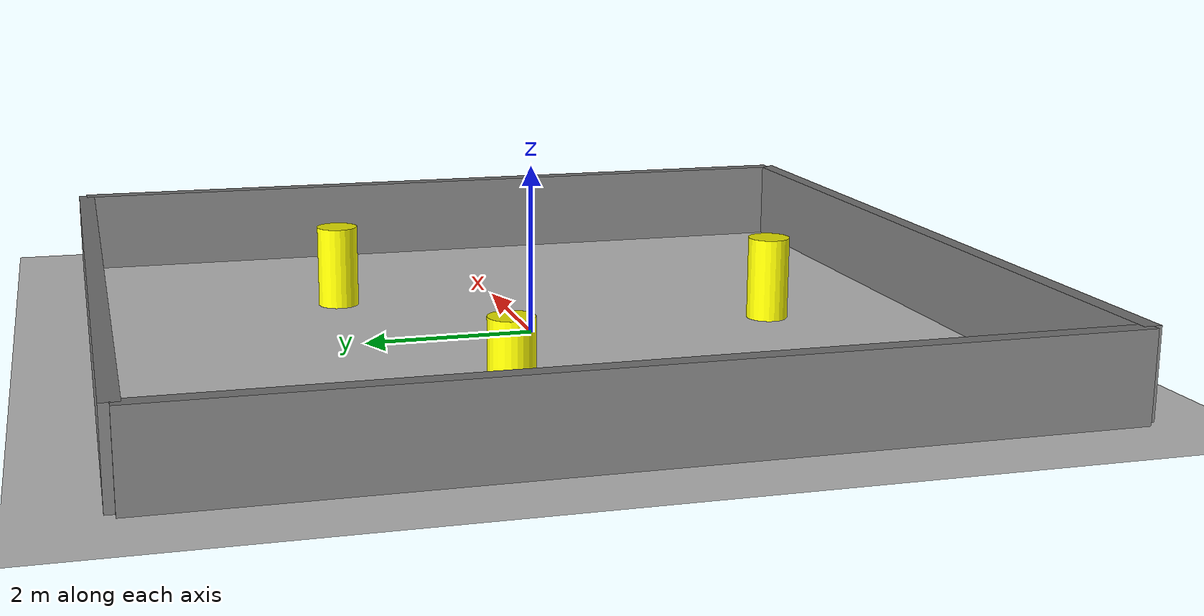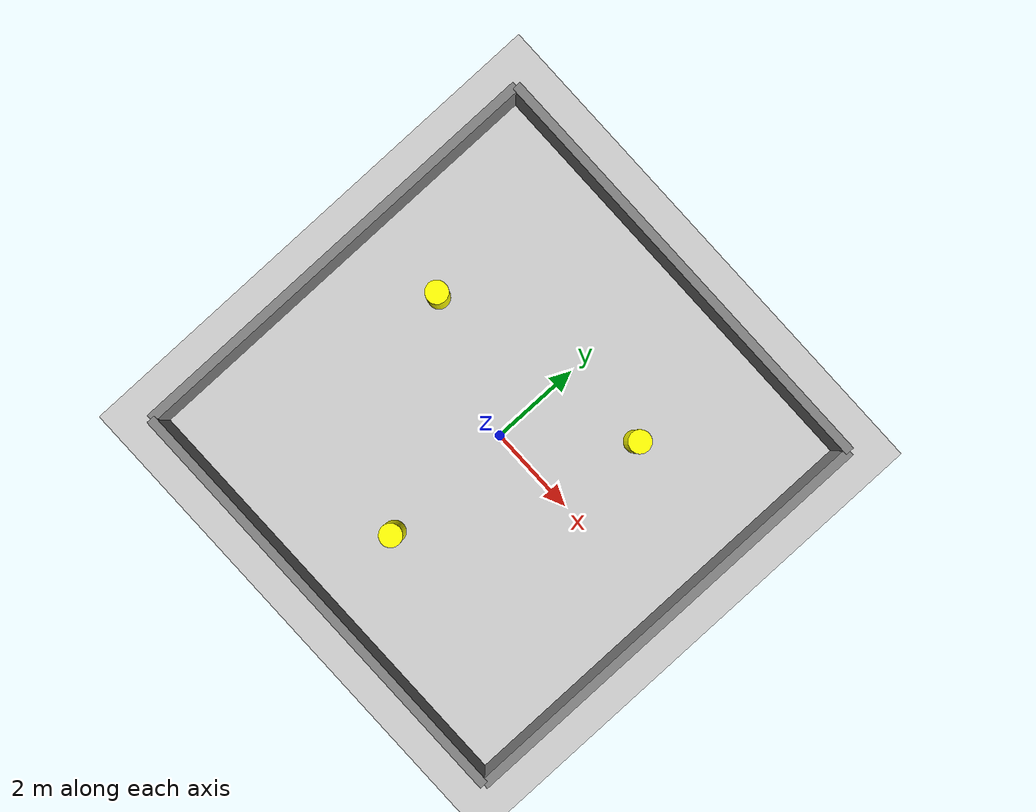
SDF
<?xml version="1.0" ?>
<sdf version="1.8">
    <world name="arena_robot">
        <plugin
            filename="gz-sim-physics-system"
            name="gz::sim::systems::Physics">
        </plugin>
        <plugin
            filename="gz-sim-user-commands-system"
            name="gz::sim::systems::UserCommands">
        </plugin>
        <plugin
            filename="gz-sim-scene-broadcaster-system"
            name="gz::sim::systems::SceneBroadcaster">
        </plugin>
        <plugin filename="gz-sim-sensors-system" name="gz::sim::systems::Sensors">
            <render_engine>ogre2</render_engine>
        </plugin>
        <plugin filename="gz-sim-imu-system" name="gz::sim::systems::Imu">
        </plugin>

        <scene>
            <ambient>0.7 0.7 0.7 1.0</ambient> <background>0.8 0.9 1.0 1.0</background> <shadows>true</shadows>
        </scene>

        <light type="directional" name="sun">
            <cast_shadows>true</cast_shadows>
            <pose>0 0 10 0 0 0</pose>
            <diffuse>0.8 0.8 0.8 1</diffuse>
            <!-- pantulan cahaya -->
            <specular>0.2 0.2 0.2 1</specular>
            <!-- pelemahan cahaya-->
            <attenuation>
                <range>1000</range>
                <constant>0.9</constant>
                <linear>0.01</linear>
                <quadratic>0.001</quadratic>
            </attenuation>
            <!-- vektor arah sinar -->
            <direction>-0.5 0.1 -0.9</direction>
        </light>

        <model name="ground_plane">
            <static>
                true
            </static>
            <link name="link">
                <collision name="collision">
                    <geometry>
                        <plane>
                            <normal>
                                0 0 1
                            </normal>
                            <size>
                                10 10
                            </size>
                        </plane>
                    </geometry>
                </collision>
                <visual name="visual">
                    <geometry>
                        <plane>
                            <normal>
                                0 0 1
                            </normal>
                            <size>
                                10 10
                            </size>
                        </plane>
                    </geometry>
                    <material>
                        <ambient>
                            0.8 0.8 0.8 1
                        </ambient>
                    </material>
                </visual>
            </link>
        </model>

        <model name="wall_top">
            <static>
                true
            </static>
            <pose>
                0 5 0.5 0 0 0
            </pose>
            <link name="link">
                <collision name="collision">
                    <geometry>
                        <box>
                            <size>
                                10 0.2 1
                            </size>
                        </box>
                    </geometry>
                </collision>
                <visual name="visual">
                    <geometry>
                        <box>
                            <size>
                                10 0.2 1
                            </size>
                        </box>
                    </geometry>
                    <material>
                        <ambient>
                            0.5 0.5 0.5 1.0
                        </ambient>
                        <diffuse>
                            0.5 0.5 0.5 1.0
                        </diffuse>
                    </material>
                </visual>
            </link>
        </model>

        <model name="wall_bottom">
            <static>
                true
            </static>
            <pose>
                0 -5 0.5 0 0 0
            </pose>
            <link name="link">
                <collision name="collision">
                    <geometry>
                        <box>
                            <size>
                                10 0.2 1
                            </size>
                        </box>
                    </geometry>
                </collision>
                <visual name="visual">
                    <geometry>
                        <box>
                            <size>
                                10 0.2 1
                            </size>
                        </box>
                    </geometry>
                    <material>
                        <ambient>
                            0.5 0.5 0.5 1.0
                        </ambient>
                        <diffuse>
                            0.5 0.5 0.5 1.0
                        </diffuse>
                    </material>
                </visual>
            </link>
        </model>

        <model name="wall_left">
            <static>
                true
            </static>
            <pose>
                -5 0 0.5 0 0 0
            </pose>
            <link name="link">
                <collision name="collision">
                    <geometry>
                        <box>
                            <size>
                                0.2 10 1
                            </size>
                        </box>
                    </geometry>
                </collision>
                <visual name="visual">
                    <geometry>
                        <box>
                            <size>
                                0.2 10 1
                            </size>
                        </box>
                    </geometry>
                    <material>
                        <ambient>
                            0.5 0.5 0.5 1.0
                        </ambient>
                        <diffuse>
                            0.5 0.5 0.5 1.0
                        </diffuse>
                    </material>
                </visual>
            </link>
        </model>

        <model name="wall_right">
            <static>
                true
            </static>
            <pose>
                5 0 0.5 0 0 0
            </pose>
            <link name="link">
                <collision name="collision">
                    <geometry>
                        <box>
                            <size>
                                0.2 10 1
                            </size>
                        </box>
                    </geometry>
                </collision>
                <visual name="visual">
                    <geometry>
                        <box>
                            <size>
                                0.2 10 1
                            </size>
                        </box>
                    </geometry>
                    <material>
                        <ambient>
                            0.5 0.5 0.5 1.0
                        </ambient>
                        <diffuse>
                            0.5 0.5 0.5 1.0
                        </diffuse>
                    </material>
                </visual>
            </link>
        </model>

        <model name="obstacle_1">
            <static>
                true
            </static>
            <pose>
                2 2 0.5 0 0 0
            </pose>
            <link name="link">
                <collision name="collision">
                    <geometry>
                        <cylinder>
                            <radius>
                                0.25
                            </radius>
                            <length>
                                1.0
                            </length>
                        </cylinder>
                    </geometry>
                </collision>
                <visual name="visual">
                    <geometry>
                        <cylinder>
                            <radius>
                                0.25
                            </radius>
                            <length>
                                1.0
                            </length>
                        </cylinder>
                    </geometry>
                    <material>
                        <ambient>
                            1.0 1.0 0.0 1.0
                        </ambient>
                        <diffuse>
                            1.0 1.0 0.0 1.0
                        </diffuse>
                    </material>
                </visual>
            </link>
        </model>

        <model name="obstacle_2">
            <static>
                true
            </static>
            <pose>
                -3 1 0.5 0 0 0
            </pose>
            <link name="link">
                <collision name="collision">
                    <geometry>
                        <cylinder>
                            <radius>
                                0.25
                            </radius>
                            <length>
                                1.0
                            </length>
                        </cylinder>
                    </geometry>
                </collision>
                <visual name="visual">
                    <geometry>
                        <cylinder>
                            <radius>
                                0.25
                            </radius>
                            <length>
                                1.0
                            </length>
                        </cylinder>
                    </geometry>
                    <material>
                        <ambient>
                            1.0 1.0 0.0 1.0
                        </ambient>
                        <diffuse>
                            1.0 1.0 0.0 1.0
                        </diffuse>
                    </material>
                </visual>
            </link>
        </model>

        <model name="obstacle_3">
            <static>
                true
            </static>
            <pose>
                0 -3 0.5 0 0 0
            </pose>
            <link name="link">
                <collision name="collision">
                    <geometry>
                        <cylinder>
                            <radius>
                                0.25
                            </radius>
                            <length>
                                1.0
                            </length>
                        </cylinder>
                    </geometry>
                </collision>
                <visual name="visual">
                    <geometry>
                        <cylinder>
                            <radius>
                                0.25
                            </radius>
                            <length>
                                1.0
                            </length>
                        </cylinder>
                    </geometry>
                    <material>
                        <ambient>
                            1.0 1.0 0.0 1.0
                        </ambient>
                        <diffuse>
                            1.0 1.0 0.0 1.0
                        </diffuse>
                    </material>
                </visual>
            </link>
        </model>
    </world>
</sdf>
